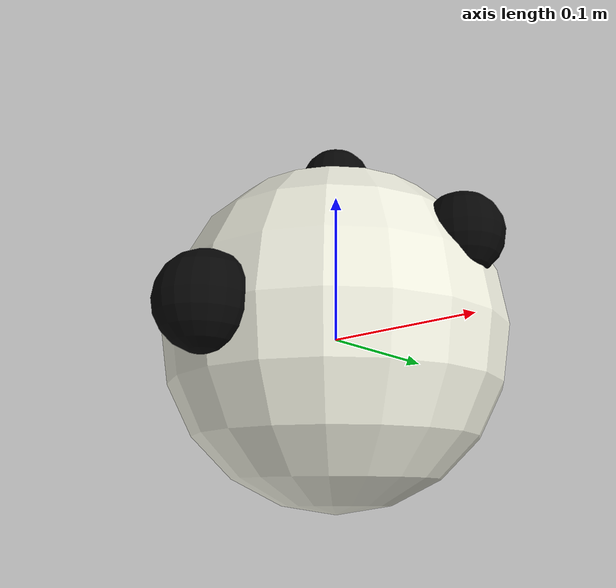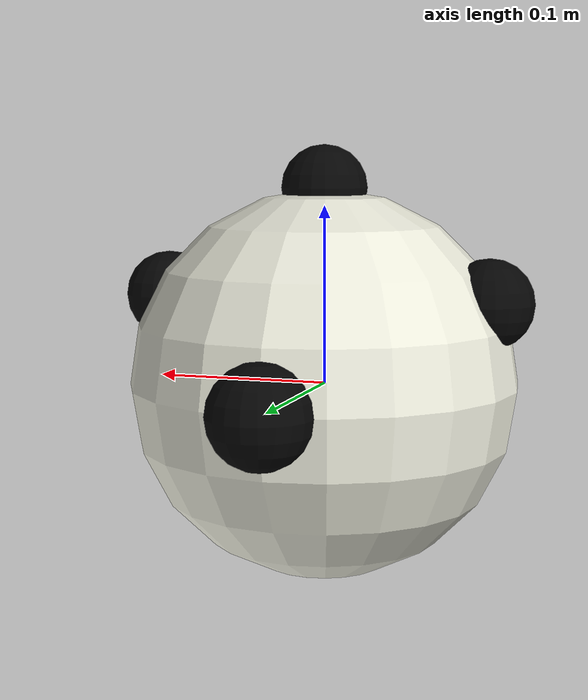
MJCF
<mujoco model="arena_football_soccer_ball">
  <asset>
    <material name="ball_white" rgba="0.92 0.92 0.86 1" />
    <material name="ball_black" rgba="0.02 0.02 0.02 1" />
  </asset>

  <worldbody>
    <body name="object">
      <geom
        name="ball_collision"
        type="sphere"
        size="0.11"
        mass="0.43"
        material="ball_white"
        rgba="0.92 0.92 0.86 1"
        friction="0.7 0.005 0.0001"
        solref="0.008 1"
        solimp="0.95 0.99 0.001"
      />
      <geom name="spot_front" type="sphere" size="0.028" pos="0.000 -0.108 0.000" material="ball_black" rgba="0.02 0.02 0.02 1" contype="0" conaffinity="0" density="0" />
      <geom name="spot_back" type="sphere" size="0.028" pos="0.000 0.108 0.000" material="ball_black" rgba="0.02 0.02 0.02 1" contype="0" conaffinity="0" density="0" />
      <geom name="spot_left" type="sphere" size="0.025" pos="-0.094 0.000 0.048" material="ball_black" rgba="0.02 0.02 0.02 1" contype="0" conaffinity="0" density="0" />
      <geom name="spot_right" type="sphere" size="0.025" pos="0.094 0.000 0.048" material="ball_black" rgba="0.02 0.02 0.02 1" contype="0" conaffinity="0" density="0" />
      <geom name="spot_top" type="sphere" size="0.024" pos="0.000 0.000 0.110" material="ball_black" rgba="0.02 0.02 0.02 1" contype="0" conaffinity="0" density="0" />
    </body>
  </worldbody>
</mujoco>
